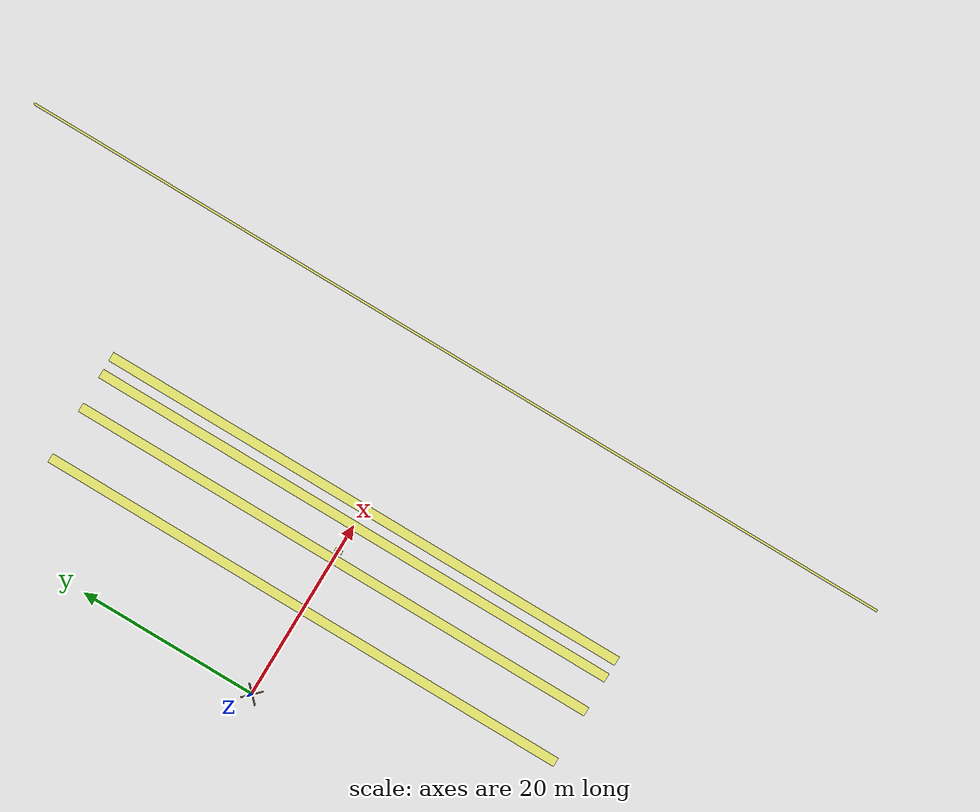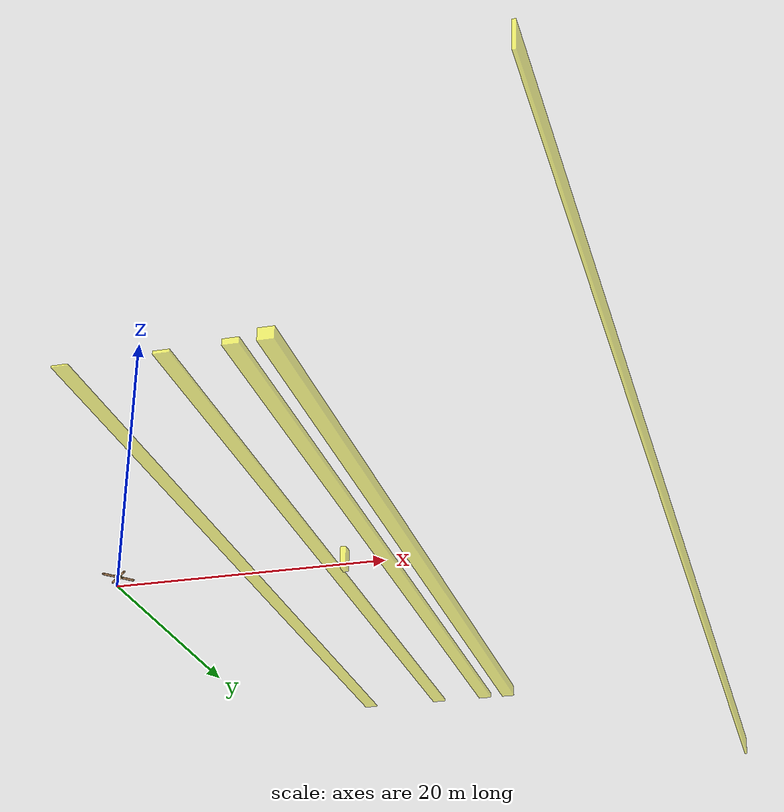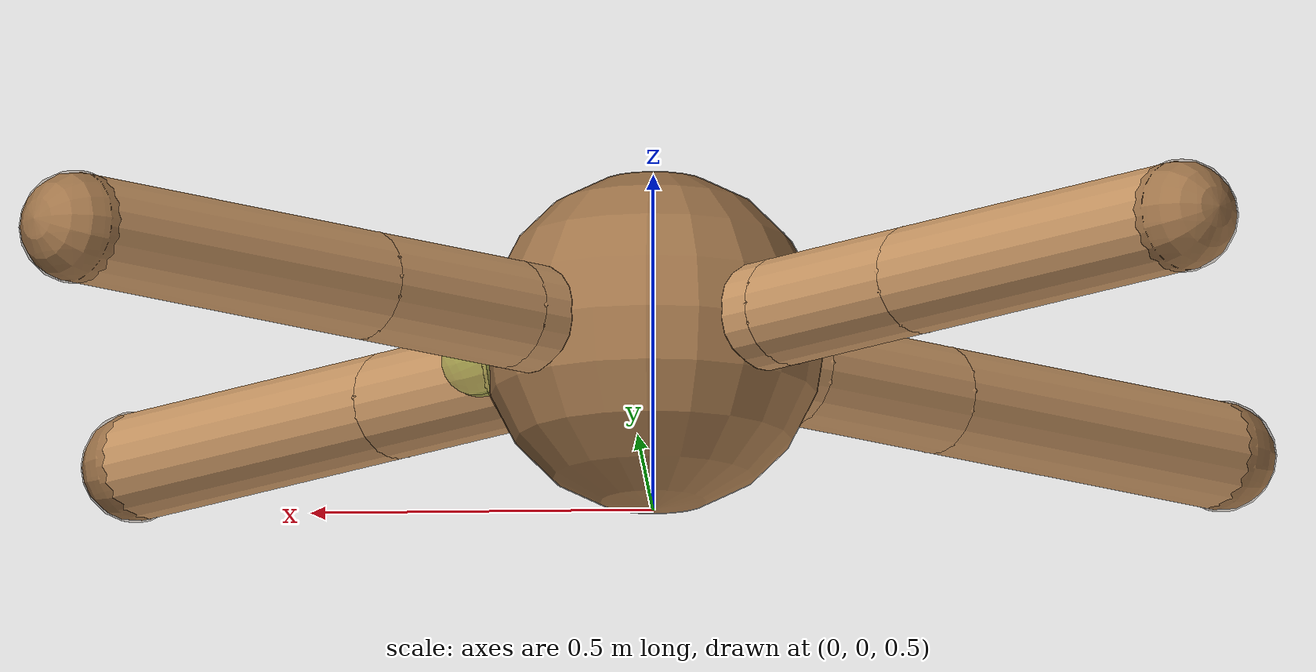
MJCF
<mujoco model="ant">
  <compiler angle="degree" coordinate="local" inertiafromgeom="true"/>
  <option integrator="RK4" timestep="0.01"/>
  <custom>
    <numeric data="0.0 0.0 0.55 1.0 0.0 0.0 0.0 0.0 1.0 0.0 -1.0 0.0 -1.0 0.0 1.0" name="init_qpos"/>
  </custom>
  <default>
    <joint armature="1" damping="1" limited="true"/>
    <geom conaffinity="0" condim="3" density="5.0" friction="1 0.5 0.5" margin="0.01" rgba="0.8 0.6 0.4 1"/>
  </default>
  <asset>
    <texture builtin="gradient" height="100" rgb1="1 1 1" rgb2="0 0 0" type="skybox" width="100"/>
    <texture builtin="flat" height="1278" mark="cross" markrgb="1 1 1" name="texgeom" random="0.01" rgb1="0.8 0.6 0.4" rgb2="0.8 0.6 0.4" type="cube" width="127"/>
    <texture builtin="checker" height="100" name="texplane" rgb1="0 0 0" rgb2="0.8 0.8 0.8" type="2d" width="100"/>
    <material name="MatPlane" reflectance="0.5" shininess="1" specular="1" texrepeat="60 60" texture="texplane"/>
    <material name="geom" texture="texgeom" texuniform="true"/>
  </asset>
  <worldbody>
    <geom conaffinity="1" condim="3" name="floor" pos='0 0 0' size='50 50 .125' type='plane' rgba="0.0 0.0 0.0 0.0"/>
    <geom conaffinity="1" condim="3" name="hurdle1" pos='10 0  0.05' size='0.5 30 0.05' type='box' rgba="1.0 1.0 0.0 0.5"/>
    <geom conaffinity="1" condim="3" name="hurdle2" pos='16 0  0.1' size='0.5 30 0.1' type='box' rgba="1.0 1.0 0.0 0.5"/>
    <geom conaffinity="1" condim="3" name="hurdle3" pos='20 0  0.2' size='0.5 30 0.2' type='box' rgba="1.0 1.0 0.0 0.5"/>
    <geom conaffinity="1" condim="3" name="hurdle4" pos='22 0  0.4' size='0.5 30 0.4' type='box' rgba="1.0 1.0 0.0 0.5"/>
    <geom conaffinity="1" condim="3" name="hurdle5" pos='17 0  0.4' size='0.2 0.4 0.8' type='box' rgba="1.0 1.0 0.0 0.5"/>
    <geom conaffinity="1" condim="3" name="hurdle6" pos='40 0  0.4' size='0.1 50 0.8' type='box' rgba="1.0 1.0 0.0 0.5"/>
    <body name="torso" pos="0 0 0.75">
      <site name="head" pos="0 0 0" size="0.251" type="sphere" rgba="0.3 0.2 0.1 0.3"/>
      <site name="eye1" pos="0.26 0.125 0" zaxis="1 0 -0.25" size="0.05" type="sphere" rgba="0.3 0.7 0.1 0.3"/>
      <site name="eye2" pos="0.26 -0.125 0" zaxis="1 0 -0.25" size="0.05" type="sphere" rgba="0.3 0.7 0.1 0.3"/>
      <site name="eye3" pos="0.26 0 -0.025" zaxis="1 0 -0.5" size="0.05" type="sphere" rgba="0.3 0.7 0.1 0.3"/>
      <geom name="torso_geom" pos="0 0 0" size="0.25" type="sphere"/>
      <joint armature="0" damping="0" limited="false" margin="0.01" name="root" pos="0 0 0" type="free"/>
      <body name="front_left_leg" pos="0 0 0">
        <geom fromto="0.0 0.0 0.0 0.2 0.2 0.0" name="aux_1_geom" size="0.08" type="capsule"/>
        <body name="aux_1" pos="0.2 0.2 0">
          <joint axis="0 0 1" name="hip_1" pos="0.0 0.0 0.0" range="-30 30" type="hinge"/>
          <geom fromto="0.0 0.0 0.0 0.2 0.2 0.0" name="left_leg_geom" size="0.08" type="capsule"/>
          <body pos="0.2 0.2 0">
	    <site name="feet1" pos="0.4 0.4 0" size="0.082" type="sphere" rgba="0.3 0.2 0.1 0.3"/>
            <joint axis="-1 1 0" name="ankle_1" pos="0.0 0.0 0.0" range="30 70" type="hinge"/>
            <geom fromto="0.0 0.0 0.0 0.4 0.4 0.0" name="left_ankle_geom" size="0.08" type="capsule"/>
          </body>
        </body>
      </body>
      <body name="front_right_leg" pos="0 0 0">
        <geom fromto="0.0 0.0 0.0 -0.2 0.2 0.0" name="aux_2_geom" size="0.08" type="capsule"/>
        <body name="aux_2" pos="-0.2 0.2 0">
          <joint axis="0 0 1" name="hip_2" pos="0.0 0.0 0.0" range="-30 30" type="hinge"/>
          <geom fromto="0.0 0.0 0.0 -0.2 0.2 0.0" name="right_leg_geom" size="0.08" type="capsule"/>
          <body pos="-0.2 0.2 0">
	    <site name="feet2" pos="-0.4 0.4 0" size="0.082" type="sphere" rgba="0.3 0.2 0.1 0.3"/>
            <joint axis="1 1 0" name="ankle_2" pos="0.0 0.0 0.0" range="-70 -30" type="hinge"/>
            <geom fromto="0.0 0.0 0.0 -0.4 0.4 0.0" name="right_ankle_geom" size="0.08" type="capsule"/>
          </body>
        </body>
      </body>
      <body name="back_leg" pos="0 0 0">
        <geom fromto="0.0 0.0 0.0 -0.2 -0.2 0.0" name="aux_3_geom" size="0.08" type="capsule"/>
        <body name="aux_3" pos="-0.2 -0.2 0">
          <joint axis="0 0 1" name="hip_3" pos="0.0 0.0 0.0" range="-30 30" type="hinge"/>
          <geom fromto="0.0 0.0 0.0 -0.2 -0.2 0.0" name="back_leg_geom" size="0.08" type="capsule"/>
          <body pos="-0.2 -0.2 0">
	    <site name="feet3" pos="-0.4 -0.4 0" size="0.082" type="sphere" rgba="0.3 0.2 0.1 0.3"/>
            <joint axis="-1 1 0" name="ankle_3" pos="0.0 0.0 0.0" range="-70 -30" type="hinge"/>
            <geom fromto="0.0 0.0 0.0 -0.4 -0.4 0.0" name="third_ankle_geom" size="0.08" type="capsule"/>
          </body>
        </body>
      </body>
      <body name="right_back_leg" pos="0 0 0">
        <geom fromto="0.0 0.0 0.0 0.2 -0.2 0.0" name="aux_4_geom" size="0.08" type="capsule"/>
        <body name="aux_4" pos="0.2 -0.2 0">
          <joint axis="0 0 1" name="hip_4" pos="0.0 0.0 0.0" range="-30 30" type="hinge"/>
          <geom fromto="0.0 0.0 0.0 0.2 -0.2 0.0" name="rightback_leg_geom" size="0.08" type="capsule"/>
          <body pos="0.2 -0.2 0">
	    <site name="feet4" pos="0.4 -0.4 0" size="0.082" type="sphere" rgba="0.3 0.2 0.1 0.3"/>
            <joint axis="1 1 0" name="ankle_4" pos="0.0 0.0 0.0" range="30 70" type="hinge"/>
            <geom fromto="0.0 0.0 0.0 0.4 -0.4 0.0" name="fourth_ankle_geom" size="0.08" type="capsule"/>
          </body>
        </body>
      </body>
    </body>
  </worldbody>
  <actuator>
    <motor ctrllimited="true" ctrlrange="-1.0 1.0" joint="hip_4" gear="150"/>
    <motor ctrllimited="true" ctrlrange="-1.0 1.0" joint="ankle_4" gear="150"/>
    <motor ctrllimited="true" ctrlrange="-1.0 1.0" joint="hip_1" gear="150"/>
    <motor ctrllimited="true" ctrlrange="-1.0 1.0" joint="ankle_1" gear="150"/>
    <motor ctrllimited="true" ctrlrange="-1.0 1.0" joint="hip_2" gear="150"/>
    <motor ctrllimited="true" ctrlrange="-1.0 1.0" joint="ankle_2" gear="150"/>
    <motor ctrllimited="true" ctrlrange="-1.0 1.0" joint="hip_3" gear="150"/>
    <motor ctrllimited="true" ctrlrange="-1.0 1.0" joint="ankle_3" gear="150"/>
  </actuator>
    <sensor>
    	<touch name="rightfoottouch" site="feet1" />
	<touch name="leftfoottouch" site="feet2" />
	<touch name="rightfoottouch2" site="feet3" />
	<touch name="leftfoottouch2" site="feet4" />

	<touch name="headtouch" cutoff="1.0" site="head" />

	<accelerometer name="accHead" site="head" />
	<gyro name="gyroHead" site="head" />

	<rangefinder name="eye1" site="eye1" cutoff="7.0"/>
	<rangefinder name="eye2" site="eye2" cutoff="7.0"/>
	<rangefinder name="eye3" site="eye3" cutoff="7.0"/>

	<framexaxis name="orientation" objtype="site" objname="head"/>
	<framelinvel name="speed" objtype="site" objname="head"/>

	<jointpos name="abdomen_y"    		joint="hip_1" />
        <jointpos name="abdomen_z"    		joint="hip_2" />
        <jointpos name="abdomen_x"    		joint="hip_3" />
	<jointpos name="abdomen_w"    		joint="hip_4" />

	<jointpos name="leg_y"    		joint="ankle_1" />
        <jointpos name="leg_z"    		joint="ankle_2" />
        <jointpos name="leg_x"    		joint="ankle_3" />
	<jointpos name="leg_w"    		joint="ankle_4" />
    </sensor>

</mujoco>
